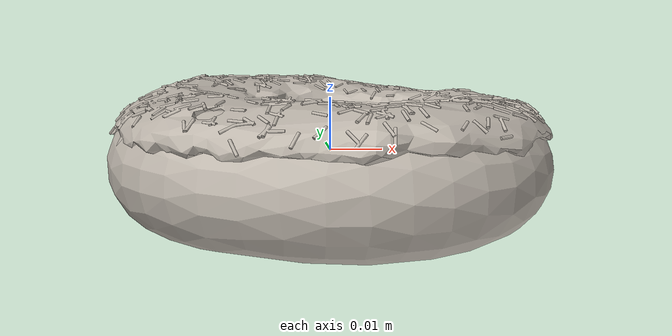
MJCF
<mujoco model="donut_54">
  <asset>
    <mesh file="visual/model_normalized_0.obj" name="model_normalized_0_vis" scale="0.0825 0.0825 0.0825" refquat="1.0 0.0 0.0 0.0"/>
    <mesh file="visual/model_normalized_1.obj" name="model_normalized_1_vis" scale="0.0825 0.0825 0.0825" refquat="1.0 0.0 0.0 0.0"/>
    <mesh file="visual/model_normalized_2.obj" name="model_normalized_2_vis" scale="0.0825 0.0825 0.0825" refquat="1.0 0.0 0.0 0.0"/>
    <mesh file="collision/model_normalized_collision_22.obj" name="model_normalized_collision_22._coll" scale="0.0825 0.0825 0.0825" refquat="1.0 0.0 0.0 0.0"/>
    <mesh file="collision/model_normalized_collision_23.obj" name="model_normalized_collision_23._coll" scale="0.0825 0.0825 0.0825" refquat="1.0 0.0 0.0 0.0"/>
    <mesh file="collision/model_normalized_collision_21.obj" name="model_normalized_collision_21._coll" scale="0.0825 0.0825 0.0825" refquat="1.0 0.0 0.0 0.0"/>
    <mesh file="collision/model_normalized_collision_20.obj" name="model_normalized_collision_20._coll" scale="0.0825 0.0825 0.0825" refquat="1.0 0.0 0.0 0.0"/>
    <mesh file="collision/model_normalized_collision_24.obj" name="model_normalized_collision_24._coll" scale="0.0825 0.0825 0.0825" refquat="1.0 0.0 0.0 0.0"/>
    <mesh file="collision/model_normalized_collision_30.obj" name="model_normalized_collision_30._coll" scale="0.0825 0.0825 0.0825" refquat="1.0 0.0 0.0 0.0"/>
    <mesh file="collision/model_normalized_collision_18.obj" name="model_normalized_collision_18._coll" scale="0.0825 0.0825 0.0825" refquat="1.0 0.0 0.0 0.0"/>
    <mesh file="collision/model_normalized_collision_19.obj" name="model_normalized_collision_19._coll" scale="0.0825 0.0825 0.0825" refquat="1.0 0.0 0.0 0.0"/>
    <mesh file="collision/model_normalized_collision_31.obj" name="model_normalized_collision_31._coll" scale="0.0825 0.0825 0.0825" refquat="1.0 0.0 0.0 0.0"/>
    <mesh file="collision/model_normalized_collision_25.obj" name="model_normalized_collision_25._coll" scale="0.0825 0.0825 0.0825" refquat="1.0 0.0 0.0 0.0"/>
    <mesh file="collision/model_normalized_collision_27.obj" name="model_normalized_collision_27._coll" scale="0.0825 0.0825 0.0825" refquat="1.0 0.0 0.0 0.0"/>
    <mesh file="collision/model_normalized_collision_26.obj" name="model_normalized_collision_26._coll" scale="0.0825 0.0825 0.0825" refquat="1.0 0.0 0.0 0.0"/>
    <mesh file="collision/model_normalized_collision_9.obj" name="model_normalized_collision_9._coll" scale="0.0825 0.0825 0.0825" refquat="1.0 0.0 0.0 0.0"/>
    <mesh file="collision/model_normalized_collision_8.obj" name="model_normalized_collision_8._coll" scale="0.0825 0.0825 0.0825" refquat="1.0 0.0 0.0 0.0"/>
    <mesh file="collision/model_normalized_collision_6.obj" name="model_normalized_collision_6._coll" scale="0.0825 0.0825 0.0825" refquat="1.0 0.0 0.0 0.0"/>
    <mesh file="collision/model_normalized_collision_7.obj" name="model_normalized_collision_7._coll" scale="0.0825 0.0825 0.0825" refquat="1.0 0.0 0.0 0.0"/>
    <mesh file="collision/model_normalized_collision_5.obj" name="model_normalized_collision_5._coll" scale="0.0825 0.0825 0.0825" refquat="1.0 0.0 0.0 0.0"/>
    <mesh file="collision/model_normalized_collision_4.obj" name="model_normalized_collision_4._coll" scale="0.0825 0.0825 0.0825" refquat="1.0 0.0 0.0 0.0"/>
    <mesh file="collision/model_normalized_collision_0.obj" name="model_normalized_collision_0._coll" scale="0.0825 0.0825 0.0825" refquat="1.0 0.0 0.0 0.0"/>
    <mesh file="collision/model_normalized_collision_1.obj" name="model_normalized_collision_1._coll" scale="0.0825 0.0825 0.0825" refquat="1.0 0.0 0.0 0.0"/>
    <mesh file="collision/model_normalized_collision_3.obj" name="model_normalized_collision_3._coll" scale="0.0825 0.0825 0.0825" refquat="1.0 0.0 0.0 0.0"/>
    <mesh file="collision/model_normalized_collision_2.obj" name="model_normalized_collision_2._coll" scale="0.0825 0.0825 0.0825" refquat="1.0 0.0 0.0 0.0"/>
    <mesh file="collision/model_normalized_collision_17.obj" name="model_normalized_collision_17._coll" scale="0.0825 0.0825 0.0825" refquat="1.0 0.0 0.0 0.0"/>
    <mesh file="collision/model_normalized_collision_16.obj" name="model_normalized_collision_16._coll" scale="0.0825 0.0825 0.0825" refquat="1.0 0.0 0.0 0.0"/>
    <mesh file="collision/model_normalized_collision_28.obj" name="model_normalized_collision_28._coll" scale="0.0825 0.0825 0.0825" refquat="1.0 0.0 0.0 0.0"/>
    <mesh file="collision/model_normalized_collision_14.obj" name="model_normalized_collision_14._coll" scale="0.0825 0.0825 0.0825" refquat="1.0 0.0 0.0 0.0"/>
    <mesh file="collision/model_normalized_collision_15.obj" name="model_normalized_collision_15._coll" scale="0.0825 0.0825 0.0825" refquat="1.0 0.0 0.0 0.0"/>
    <mesh file="collision/model_normalized_collision_29.obj" name="model_normalized_collision_29._coll" scale="0.0825 0.0825 0.0825" refquat="1.0 0.0 0.0 0.0"/>
    <mesh file="collision/model_normalized_collision_11.obj" name="model_normalized_collision_11._coll" scale="0.0825 0.0825 0.0825" refquat="1.0 0.0 0.0 0.0"/>
    <mesh file="collision/model_normalized_collision_10.obj" name="model_normalized_collision_10._coll" scale="0.0825 0.0825 0.0825" refquat="1.0 0.0 0.0 0.0"/>
    <mesh file="collision/model_normalized_collision_12.obj" name="model_normalized_collision_12._coll" scale="0.0825 0.0825 0.0825" refquat="1.0 0.0 0.0 0.0"/>
    <mesh file="collision/model_normalized_collision_13.obj" name="model_normalized_collision_13._coll" scale="0.0825 0.0825 0.0825" refquat="1.0 0.0 0.0 0.0"/>
    <texture type="2d" name="image0" file="visual/image0.png"/>
    <material name="astry_material" texture="image0" specular="0.5" shininess="0.529001211"/>
    <material name="donut_base_material" texture="image0" specular="0.5" shininess="0.000725535"/>
    <material name="donut_top_material" texture="image0" specular="0.5" shininess="0.621417372"/>
  </asset>
  <worldbody>
  <body>
      <body name="object">
        <geom solimp="0.998 0.998 0.001" solref="0.001 1" density="100" friction="0.95 0.3 0.1" type="mesh" mesh="model_normalized_0_vis" conaffinity="0" contype="0" group="1" material="astry_material"/>
        <geom solimp="0.998 0.998 0.001" solref="0.001 1" density="100" friction="0.95 0.3 0.1" type="mesh" mesh="model_normalized_1_vis" conaffinity="0" contype="0" group="1" material="donut_base_material"/>
        <geom solimp="0.998 0.998 0.001" solref="0.001 1" density="100" friction="0.95 0.3 0.1" type="mesh" mesh="model_normalized_2_vis" conaffinity="0" contype="0" group="1" material="donut_top_material"/>
        <geom solimp="0.998 0.998 0.001" solref="0.001 1" density="100" friction="0.95 0.3 0.1" type="mesh" mesh="model_normalized_collision_22._coll" group="0" rgba="0.8 0.8 0.8 0.0"/>
        <geom solimp="0.998 0.998 0.001" solref="0.001 1" density="100" friction="0.95 0.3 0.1" type="mesh" mesh="model_normalized_collision_23._coll" group="0" rgba="0.8 0.8 0.8 0.0"/>
        <geom solimp="0.998 0.998 0.001" solref="0.001 1" density="100" friction="0.95 0.3 0.1" type="mesh" mesh="model_normalized_collision_21._coll" group="0" rgba="0.8 0.8 0.8 0.0"/>
        <geom solimp="0.998 0.998 0.001" solref="0.001 1" density="100" friction="0.95 0.3 0.1" type="mesh" mesh="model_normalized_collision_20._coll" group="0" rgba="0.8 0.8 0.8 0.0"/>
        <geom solimp="0.998 0.998 0.001" solref="0.001 1" density="100" friction="0.95 0.3 0.1" type="mesh" mesh="model_normalized_collision_24._coll" group="0" rgba="0.8 0.8 0.8 0.0"/>
        <geom solimp="0.998 0.998 0.001" solref="0.001 1" density="100" friction="0.95 0.3 0.1" type="mesh" mesh="model_normalized_collision_30._coll" group="0" rgba="0.8 0.8 0.8 0.0"/>
        <geom solimp="0.998 0.998 0.001" solref="0.001 1" density="100" friction="0.95 0.3 0.1" type="mesh" mesh="model_normalized_collision_18._coll" group="0" rgba="0.8 0.8 0.8 0.0"/>
        <geom solimp="0.998 0.998 0.001" solref="0.001 1" density="100" friction="0.95 0.3 0.1" type="mesh" mesh="model_normalized_collision_19._coll" group="0" rgba="0.8 0.8 0.8 0.0"/>
        <geom solimp="0.998 0.998 0.001" solref="0.001 1" density="100" friction="0.95 0.3 0.1" type="mesh" mesh="model_normalized_collision_31._coll" group="0" rgba="0.8 0.8 0.8 0.0"/>
        <geom solimp="0.998 0.998 0.001" solref="0.001 1" density="100" friction="0.95 0.3 0.1" type="mesh" mesh="model_normalized_collision_25._coll" group="0" rgba="0.8 0.8 0.8 0.0"/>
        <geom solimp="0.998 0.998 0.001" solref="0.001 1" density="100" friction="0.95 0.3 0.1" type="mesh" mesh="model_normalized_collision_27._coll" group="0" rgba="0.8 0.8 0.8 0.0"/>
        <geom solimp="0.998 0.998 0.001" solref="0.001 1" density="100" friction="0.95 0.3 0.1" type="mesh" mesh="model_normalized_collision_26._coll" group="0" rgba="0.8 0.8 0.8 0.0"/>
        <geom solimp="0.998 0.998 0.001" solref="0.001 1" density="100" friction="0.95 0.3 0.1" type="mesh" mesh="model_normalized_collision_9._coll" group="0" rgba="0.8 0.8 0.8 0.0"/>
        <geom solimp="0.998 0.998 0.001" solref="0.001 1" density="100" friction="0.95 0.3 0.1" type="mesh" mesh="model_normalized_collision_8._coll" group="0" rgba="0.8 0.8 0.8 0.0"/>
        <geom solimp="0.998 0.998 0.001" solref="0.001 1" density="100" friction="0.95 0.3 0.1" type="mesh" mesh="model_normalized_collision_6._coll" group="0" rgba="0.8 0.8 0.8 0.0"/>
        <geom solimp="0.998 0.998 0.001" solref="0.001 1" density="100" friction="0.95 0.3 0.1" type="mesh" mesh="model_normalized_collision_7._coll" group="0" rgba="0.8 0.8 0.8 0.0"/>
        <geom solimp="0.998 0.998 0.001" solref="0.001 1" density="100" friction="0.95 0.3 0.1" type="mesh" mesh="model_normalized_collision_5._coll" group="0" rgba="0.8 0.8 0.8 0.0"/>
        <geom solimp="0.998 0.998 0.001" solref="0.001 1" density="100" friction="0.95 0.3 0.1" type="mesh" mesh="model_normalized_collision_4._coll" group="0" rgba="0.8 0.8 0.8 0.0"/>
        <geom solimp="0.998 0.998 0.001" solref="0.001 1" density="100" friction="0.95 0.3 0.1" type="mesh" mesh="model_normalized_collision_0._coll" group="0" rgba="0.8 0.8 0.8 0.0"/>
        <geom solimp="0.998 0.998 0.001" solref="0.001 1" density="100" friction="0.95 0.3 0.1" type="mesh" mesh="model_normalized_collision_1._coll" group="0" rgba="0.8 0.8 0.8 0.0"/>
        <geom solimp="0.998 0.998 0.001" solref="0.001 1" density="100" friction="0.95 0.3 0.1" type="mesh" mesh="model_normalized_collision_3._coll" group="0" rgba="0.8 0.8 0.8 0.0"/>
        <geom solimp="0.998 0.998 0.001" solref="0.001 1" density="100" friction="0.95 0.3 0.1" type="mesh" mesh="model_normalized_collision_2._coll" group="0" rgba="0.8 0.8 0.8 0.0"/>
        <geom solimp="0.998 0.998 0.001" solref="0.001 1" density="100" friction="0.95 0.3 0.1" type="mesh" mesh="model_normalized_collision_17._coll" group="0" rgba="0.8 0.8 0.8 0.0"/>
        <geom solimp="0.998 0.998 0.001" solref="0.001 1" density="100" friction="0.95 0.3 0.1" type="mesh" mesh="model_normalized_collision_16._coll" group="0" rgba="0.8 0.8 0.8 0.0"/>
        <geom solimp="0.998 0.998 0.001" solref="0.001 1" density="100" friction="0.95 0.3 0.1" type="mesh" mesh="model_normalized_collision_28._coll" group="0" rgba="0.8 0.8 0.8 0.0"/>
        <geom solimp="0.998 0.998 0.001" solref="0.001 1" density="100" friction="0.95 0.3 0.1" type="mesh" mesh="model_normalized_collision_14._coll" group="0" rgba="0.8 0.8 0.8 0.0"/>
        <geom solimp="0.998 0.998 0.001" solref="0.001 1" density="100" friction="0.95 0.3 0.1" type="mesh" mesh="model_normalized_collision_15._coll" group="0" rgba="0.8 0.8 0.8 0.0"/>
        <geom solimp="0.998 0.998 0.001" solref="0.001 1" density="100" friction="0.95 0.3 0.1" type="mesh" mesh="model_normalized_collision_29._coll" group="0" rgba="0.8 0.8 0.8 0.0"/>
        <geom solimp="0.998 0.998 0.001" solref="0.001 1" density="100" friction="0.95 0.3 0.1" type="mesh" mesh="model_normalized_collision_11._coll" group="0" rgba="0.8 0.8 0.8 0.0"/>
        <geom solimp="0.998 0.998 0.001" solref="0.001 1" density="100" friction="0.95 0.3 0.1" type="mesh" mesh="model_normalized_collision_10._coll" group="0" rgba="0.8 0.8 0.8 0.0"/>
        <geom solimp="0.998 0.998 0.001" solref="0.001 1" density="100" friction="0.95 0.3 0.1" type="mesh" mesh="model_normalized_collision_12._coll" group="0" rgba="0.8 0.8 0.8 0.0"/>
        <geom solimp="0.998 0.998 0.001" solref="0.001 1" density="100" friction="0.95 0.3 0.1" type="mesh" mesh="model_normalized_collision_13._coll" group="0" rgba="0.8 0.8 0.8 0.0"/>
      </body>
      <site rgba="0 0 0 0" size="0.005" pos="1.2342750000002286e-06 0.00025600259999999865 -0.017371493999999994" name="bottom_site"/>
      <site rgba="0 0 0 0" size="0.005" pos="1.2342750000002286e-06 0.00025600259999999865 0.017322406499999995" name="top_site"/>
      <site rgba="0 0 0 0" size="0.005" pos="0.05153304554999999 0.05230801694999999 -2.4543750000000495e-05" name="horizontal_radius_site"/>
    </body>
    </worldbody>
</mujoco>
